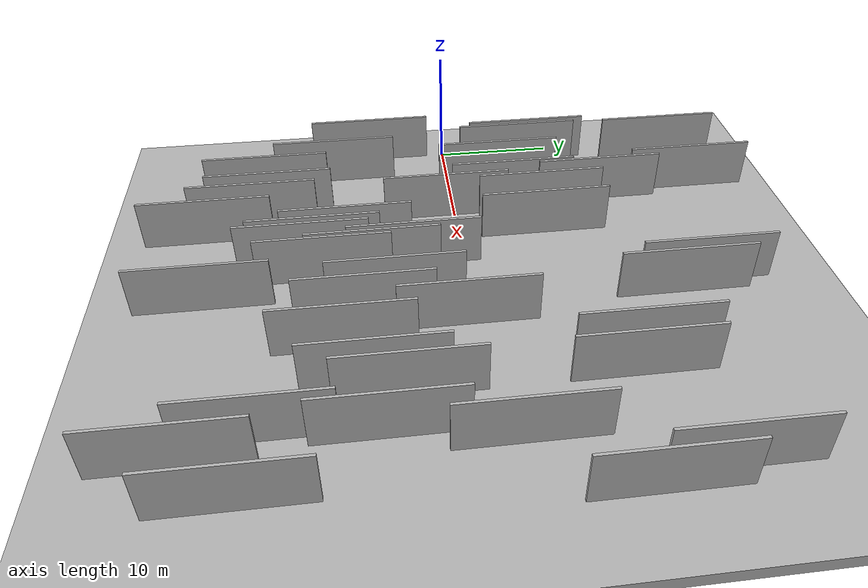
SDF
<?xml version="1.0" encoding="utf-8"?>

<sdf version="1.6">

   <world name="default">

      <gui fullscreen="0">

         <camera name="user_camera">

            <pose>-15 0 4.57585 0 0 0</pose>

            <view_controller>orbit</view_controller>

         </camera>

      </gui>

      <scene>

         <sky>

           <clouds>

             <speed>12</speed>

           </clouds>

         </sky>

         <ambient>0.4 0.4 0.4 1</ambient>

         <background>0.7 0.7 0.7 1</background>

         <shadows>1</shadows>

      </scene>

      <gravity>0 0 -9.8066</gravity>

      <magnetic_field>6e-06 2.3e-05 -4.2e-05</magnetic_field>

      <physics default="0" name="default_physics" type="ode">

         <ode>

            <solver>

               <type>quick</type>

               <iters>10</iters>

               <sor>1.0</sor>

               <use_dynamic_moi_rescaling>0</use_dynamic_moi_rescaling>

            </solver>

            <constraints>

               <cfm>0</cfm>

               <erp>0.2</erp>

               <contact_max_correcting_vel>100</contact_max_correcting_vel>

               <contact_surface_layer>0.001</contact_surface_layer>

            </constraints>

         </ode>

         <max_step_size>0.004</max_step_size>

         <real_time_factor>1</real_time_factor>

         <real_time_update_rate>250</real_time_update_rate>

      </physics>

      <light name="sun" type="directional">

         <cast_shadows>1</cast_shadows>

         <pose>0 0 10 0 0 0</pose>

         <diffuse>0.8 0.8 0.8 1</diffuse>

         <specular>0.2 0.2 0.2 1</specular>

         <attenuation>

            <range>1000</range>

            <constant>0.9</constant>

            <linear>0.01</linear>

            <quadratic>0.001</quadratic>

         </attenuation>

         <direction>-0.5 0.1 -0.9</direction>

      </light>

      <include>

         <name>ground_plane_1</name>

         <uri>model://HANNAS_ground_plane</uri>

         <pose>0 0 0  0 0 0</pose>

      </include>

      <include>

         <name>ground_plane_2</name>

         <uri>model://HANNAS_ground_plane</uri>

         <pose>100 0 0  0 0 0</pose>

      </include>

      <model name="HANNAS_wall_1">

         <static>1</static>

         <pose frame="">23.1692 -5.7111 2.5 0.000000 0.000000 1.570796</pose>

         <link name="link">

            <pose frame="">0 0 2.00 0 0 0</pose>

            <collision name="collision">

               <geometry>

                  <box>

                     <size>10.00 0.2 4.00</size>

                  </box>

               </geometry>

               <max_contacts>10</max_contacts>

               <surface>

                  <contact>

                     <ode/>

                  </contact>

                  <bounce/>

                  <friction>

                     <torsional>

                        <ode/>

                     </torsional>

                     <ode/>

                  </friction>

               </surface>

            </collision>

            <visual name="visual">

               <cast_shadows>0</cast_shadows>

               <geometry>

                  <box>

                     <size>10.00 0.2 4.00</size>

                  </box>

               </geometry>

               <material>

                  <script>

                     <uri>model://HANNAS_wall/materials/scripts</uri>

                     <uri>model://HANNAS_wall/materials/textures</uri>

                     <name>vrc/HANNAS_wall</name>

                  </script>

               </material>

            </visual>

            <self_collide>0</self_collide>

            <enable_wind>0</enable_wind>

            <kinematic>0</kinematic>

         </link>

      </model>

      <model name="HANNAS_wall_2">

         <static>1</static>

         <pose frame="">8.8089 -15.5152 2.5 0.000000 0.000000 1.570796</pose>

         <link name="link">

            <pose frame="">0 0 2.00 0 0 0</pose>

            <collision name="collision">

               <geometry>

                  <box>

                     <size>10.00 0.2 4.00</size>

                  </box>

               </geometry>

               <max_contacts>10</max_contacts>

               <surface>

                  <contact>

                     <ode/>

                  </contact>

                  <bounce/>

                  <friction>

                     <torsional>

                        <ode/>

                     </torsional>

                     <ode/>

                  </friction>

               </surface>

            </collision>

            <visual name="visual">

               <cast_shadows>0</cast_shadows>

               <geometry>

                  <box>

                     <size>10.00 0.2 4.00</size>

                  </box>

               </geometry>

               <material>

                  <script>

                     <uri>model://HANNAS_wall/materials/scripts</uri>

                     <uri>model://HANNAS_wall/materials/textures</uri>

                     <name>vrc/HANNAS_wall</name>

                  </script>

               </material>

            </visual>

            <self_collide>0</self_collide>

            <enable_wind>0</enable_wind>

            <kinematic>0</kinematic>

         </link>

      </model>

      <model name="HANNAS_wall_3">

         <static>1</static>

         <pose frame="">23.7531 17.0360 2.5 0.000000 0.000000 1.570796</pose>

         <link name="link">

            <pose frame="">0 0 2.00 0 0 0</pose>

            <collision name="collision">

               <geometry>

                  <box>

                     <size>10.00 0.2 4.00</size>

                  </box>

               </geometry>

               <max_contacts>10</max_contacts>

               <surface>

                  <contact>

                     <ode/>

                  </contact>

                  <bounce/>

                  <friction>

                     <torsional>

                        <ode/>

                     </torsional>

                     <ode/>

                  </friction>

               </surface>

            </collision>

            <visual name="visual">

               <cast_shadows>0</cast_shadows>

               <geometry>

                  <box>

                     <size>10.00 0.2 4.00</size>

                  </box>

               </geometry>

               <material>

                  <script>

                     <uri>model://HANNAS_wall/materials/scripts</uri>

                     <uri>model://HANNAS_wall/materials/textures</uri>

                     <name>vrc/HANNAS_wall</name>

                  </script>

               </material>

            </visual>

            <self_collide>0</self_collide>

            <enable_wind>0</enable_wind>

            <kinematic>0</kinematic>

         </link>

      </model>

      <model name="HANNAS_wall_4">

         <static>1</static>

         <pose frame="">12.7245 -16.4212 2.5 0.000000 0.000000 1.570796</pose>

         <link name="link">

            <pose frame="">0 0 2.00 0 0 0</pose>

            <collision name="collision">

               <geometry>

                  <box>

                     <size>10.00 0.2 4.00</size>

                  </box>

               </geometry>

               <max_contacts>10</max_contacts>

               <surface>

                  <contact>

                     <ode/>

                  </contact>

                  <bounce/>

                  <friction>

                     <torsional>

                        <ode/>

                     </torsional>

                     <ode/>

                  </friction>

               </surface>

            </collision>

            <visual name="visual">

               <cast_shadows>0</cast_shadows>

               <geometry>

                  <box>

                     <size>10.00 0.2 4.00</size>

                  </box>

               </geometry>

               <material>

                  <script>

                     <uri>model://HANNAS_wall/materials/scripts</uri>

                     <uri>model://HANNAS_wall/materials/textures</uri>

                     <name>vrc/HANNAS_wall</name>

                  </script>

               </material>

            </visual>

            <self_collide>0</self_collide>

            <enable_wind>0</enable_wind>

            <kinematic>0</kinematic>

         </link>

      </model>

      <model name="HANNAS_wall_5">

         <static>1</static>

         <pose frame="">24.8041 -7.9614 2.5 0.000000 0.000000 1.570796</pose>

         <link name="link">

            <pose frame="">0 0 2.00 0 0 0</pose>

            <collision name="collision">

               <geometry>

                  <box>

                     <size>10.00 0.2 4.00</size>

                  </box>

               </geometry>

               <max_contacts>10</max_contacts>

               <surface>

                  <contact>

                     <ode/>

                  </contact>

                  <bounce/>

                  <friction>

                     <torsional>

                        <ode/>

                     </torsional>

                     <ode/>

                  </friction>

               </surface>

            </collision>

            <visual name="visual">

               <cast_shadows>0</cast_shadows>

               <geometry>

                  <box>

                     <size>10.00 0.2 4.00</size>

                  </box>

               </geometry>

               <material>

                  <script>

                     <uri>model://HANNAS_wall/materials/scripts</uri>

                     <uri>model://HANNAS_wall/materials/textures</uri>

                     <name>vrc/HANNAS_wall</name>

                  </script>

               </material>

            </visual>

            <self_collide>0</self_collide>

            <enable_wind>0</enable_wind>

            <kinematic>0</kinematic>

         </link>

      </model>

      <model name="HANNAS_wall_6">

         <static>1</static>

         <pose frame="">36.3233 -19.7050 2.5 0.000000 0.000000 1.570796</pose>

         <link name="link">

            <pose frame="">0 0 2.00 0 0 0</pose>

            <collision name="collision">

               <geometry>

                  <box>

                     <size>10.00 0.2 4.00</size>

                  </box>

               </geometry>

               <max_contacts>10</max_contacts>

               <surface>

                  <contact>

                     <ode/>

                  </contact>

                  <bounce/>

                  <friction>

                     <torsional>

                        <ode/>

                     </torsional>

                     <ode/>

                  </friction>

               </surface>

            </collision>

            <visual name="visual">

               <cast_shadows>0</cast_shadows>

               <geometry>

                  <box>

                     <size>10.00 0.2 4.00</size>

                  </box>

               </geometry>

               <material>

                  <script>

                     <uri>model://HANNAS_wall/materials/scripts</uri>

                     <uri>model://HANNAS_wall/materials/textures</uri>

                     <name>vrc/HANNAS_wall</name>

                  </script>

               </material>

            </visual>

            <self_collide>0</self_collide>

            <enable_wind>0</enable_wind>

            <kinematic>0</kinematic>

         </link>

      </model>

      <model name="HANNAS_wall_7">

         <static>1</static>

         <pose frame="">13.7988 6.6085 2.5 0.000000 0.000000 1.570796</pose>

         <link name="link">

            <pose frame="">0 0 2.00 0 0 0</pose>

            <collision name="collision">

               <geometry>

                  <box>

                     <size>10.00 0.2 4.00</size>

                  </box>

               </geometry>

               <max_contacts>10</max_contacts>

               <surface>

                  <contact>

                     <ode/>

                  </contact>

                  <bounce/>

                  <friction>

                     <torsional>

                        <ode/>

                     </torsional>

                     <ode/>

                  </friction>

               </surface>

            </collision>

            <visual name="visual">

               <cast_shadows>0</cast_shadows>

               <geometry>

                  <box>

                     <size>10.00 0.2 4.00</size>

                  </box>

               </geometry>

               <material>

                  <script>

                     <uri>model://HANNAS_wall/materials/scripts</uri>

                     <uri>model://HANNAS_wall/materials/textures</uri>

                     <name>vrc/HANNAS_wall</name>

                  </script>

               </material>

            </visual>

            <self_collide>0</self_collide>

            <enable_wind>0</enable_wind>

            <kinematic>0</kinematic>

         </link>

      </model>

      <model name="HANNAS_wall_8">

         <static>1</static>

         <pose frame="">11.4305 19.7447 2.5 0.000000 0.000000 1.570796</pose>

         <link name="link">

            <pose frame="">0 0 2.00 0 0 0</pose>

            <collision name="collision">

               <geometry>

                  <box>

                     <size>10.00 0.2 4.00</size>

                  </box>

               </geometry>

               <max_contacts>10</max_contacts>

               <surface>

                  <contact>

                     <ode/>

                  </contact>

                  <bounce/>

                  <friction>

                     <torsional>

                        <ode/>

                     </torsional>

                     <ode/>

                  </friction>

               </surface>

            </collision>

            <visual name="visual">

               <cast_shadows>0</cast_shadows>

               <geometry>

                  <box>

                     <size>10.00 0.2 4.00</size>

                  </box>

               </geometry>

               <material>

                  <script>

                     <uri>model://HANNAS_wall/materials/scripts</uri>

                     <uri>model://HANNAS_wall/materials/textures</uri>

                     <name>vrc/HANNAS_wall</name>

                  </script>

               </material>

            </visual>

            <self_collide>0</self_collide>

            <enable_wind>0</enable_wind>

            <kinematic>0</kinematic>

         </link>

      </model>

      <model name="HANNAS_wall_9">

         <static>1</static>

         <pose frame="">35.5158 -6.8613 2.5 0.000000 0.000000 1.570796</pose>

         <link name="link">

            <pose frame="">0 0 2.00 0 0 0</pose>

            <collision name="collision">

               <geometry>

                  <box>

                     <size>10.00 0.2 4.00</size>

                  </box>

               </geometry>

               <max_contacts>10</max_contacts>

               <surface>

                  <contact>

                     <ode/>

                  </contact>

                  <bounce/>

                  <friction>

                     <torsional>

                        <ode/>

                     </torsional>

                     <ode/>

                  </friction>

               </surface>

            </collision>

            <visual name="visual">

               <cast_shadows>0</cast_shadows>

               <geometry>

                  <box>

                     <size>10.00 0.2 4.00</size>

                  </box>

               </geometry>

               <material>

                  <script>

                     <uri>model://HANNAS_wall/materials/scripts</uri>

                     <uri>model://HANNAS_wall/materials/textures</uri>

                     <name>vrc/HANNAS_wall</name>

                  </script>

               </material>

            </visual>

            <self_collide>0</self_collide>

            <enable_wind>0</enable_wind>

            <kinematic>0</kinematic>

         </link>

      </model>

      <model name="HANNAS_wall_10">

         <static>1</static>

         <pose frame="">26.2723 -0.8661 2.5 0.000000 0.000000 1.570796</pose>

         <link name="link">

            <pose frame="">0 0 2.00 0 0 0</pose>

            <collision name="collision">

               <geometry>

                  <box>

                     <size>10.00 0.2 4.00</size>

                  </box>

               </geometry>

               <max_contacts>10</max_contacts>

               <surface>

                  <contact>

                     <ode/>

                  </contact>

                  <bounce/>

                  <friction>

                     <torsional>

                        <ode/>

                     </torsional>

                     <ode/>

                  </friction>

               </surface>

            </collision>

            <visual name="visual">

               <cast_shadows>0</cast_shadows>

               <geometry>

                  <box>

                     <size>10.00 0.2 4.00</size>

                  </box>

               </geometry>

               <material>

                  <script>

                     <uri>model://HANNAS_wall/materials/scripts</uri>

                     <uri>model://HANNAS_wall/materials/textures</uri>

                     <name>vrc/HANNAS_wall</name>

                  </script>

               </material>

            </visual>

            <self_collide>0</self_collide>

            <enable_wind>0</enable_wind>

            <kinematic>0</kinematic>

         </link>

      </model>

      <model name="HANNAS_wall_11">

         <static>1</static>

         <pose frame="">12.3211 11.7401 2.5 0.000000 0.000000 1.570796</pose>

         <link name="link">

            <pose frame="">0 0 2.00 0 0 0</pose>

            <collision name="collision">

               <geometry>

                  <box>

                     <size>10.00 0.2 4.00</size>

                  </box>

               </geometry>

               <max_contacts>10</max_contacts>

               <surface>

                  <contact>

                     <ode/>

                  </contact>

                  <bounce/>

                  <friction>

                     <torsional>

                        <ode/>

                     </torsional>

                     <ode/>

                  </friction>

               </surface>

            </collision>

            <visual name="visual">

               <cast_shadows>0</cast_shadows>

               <geometry>

                  <box>

                     <size>10.00 0.2 4.00</size>

                  </box>

               </geometry>

               <material>

                  <script>

                     <uri>model://HANNAS_wall/materials/scripts</uri>

                     <uri>model://HANNAS_wall/materials/textures</uri>

                     <name>vrc/HANNAS_wall</name>

                  </script>

               </material>

            </visual>

            <self_collide>0</self_collide>

            <enable_wind>0</enable_wind>

            <kinematic>0</kinematic>

         </link>

      </model>

      <model name="HANNAS_wall_12">

         <static>1</static>

         <pose frame="">30.4432 10.5828 2.5 0.000000 0.000000 1.570796</pose>

         <link name="link">

            <pose frame="">0 0 2.00 0 0 0</pose>

            <collision name="collision">

               <geometry>

                  <box>

                     <size>10.00 0.2 4.00</size>

                  </box>

               </geometry>

               <max_contacts>10</max_contacts>

               <surface>

                  <contact>

                     <ode/>

                  </contact>

                  <bounce/>

                  <friction>

                     <torsional>

                        <ode/>

                     </torsional>

                     <ode/>

                  </friction>

               </surface>

            </collision>

            <visual name="visual">

               <cast_shadows>0</cast_shadows>

               <geometry>

                  <box>

                     <size>10.00 0.2 4.00</size>

                  </box>

               </geometry>

               <material>

                  <script>

                     <uri>model://HANNAS_wall/materials/scripts</uri>

                     <uri>model://HANNAS_wall/materials/textures</uri>

                     <name>vrc/HANNAS_wall</name>

                  </script>

               </material>

            </visual>

            <self_collide>0</self_collide>

            <enable_wind>0</enable_wind>

            <kinematic>0</kinematic>

         </link>

      </model>

      <model name="HANNAS_wall_13">

         <static>1</static>

         <pose frame="">34.8118 -14.9134 2.5 0.000000 0.000000 1.570796</pose>

         <link name="link">

            <pose frame="">0 0 2.00 0 0 0</pose>

            <collision name="collision">

               <geometry>

                  <box>

                     <size>10.00 0.2 4.00</size>

                  </box>

               </geometry>

               <max_contacts>10</max_contacts>

               <surface>

                  <contact>

                     <ode/>

                  </contact>

                  <bounce/>

                  <friction>

                     <torsional>

                        <ode/>

                     </torsional>

                     <ode/>

                  </friction>

               </surface>

            </collision>

            <visual name="visual">

               <cast_shadows>0</cast_shadows>

               <geometry>

                  <box>

                     <size>10.00 0.2 4.00</size>

                  </box>

               </geometry>

               <material>

                  <script>

                     <uri>model://HANNAS_wall/materials/scripts</uri>

                     <uri>model://HANNAS_wall/materials/textures</uri>

                     <name>vrc/HANNAS_wall</name>

                  </script>

               </material>

            </visual>

            <self_collide>0</self_collide>

            <enable_wind>0</enable_wind>

            <kinematic>0</kinematic>

         </link>

      </model>

      <model name="HANNAS_wall_14">

         <static>1</static>

         <pose frame="">32.4131 9.8913 2.5 0.000000 0.000000 1.570796</pose>

         <link name="link">

            <pose frame="">0 0 2.00 0 0 0</pose>

            <collision name="collision">

               <geometry>

                  <box>

                     <size>10.00 0.2 4.00</size>

                  </box>

               </geometry>

               <max_contacts>10</max_contacts>

               <surface>

                  <contact>

                     <ode/>

                  </contact>

                  <bounce/>

                  <friction>

                     <torsional>

                        <ode/>

                     </torsional>

                     <ode/>

                  </friction>

               </surface>

            </collision>

            <visual name="visual">

               <cast_shadows>0</cast_shadows>

               <geometry>

                  <box>

                     <size>10.00 0.2 4.00</size>

                  </box>

               </geometry>

               <material>

                  <script>

                     <uri>model://HANNAS_wall/materials/scripts</uri>

                     <uri>model://HANNAS_wall/materials/textures</uri>

                     <name>vrc/HANNAS_wall</name>

                  </script>

               </material>

            </visual>

            <self_collide>0</self_collide>

            <enable_wind>0</enable_wind>

            <kinematic>0</kinematic>

         </link>

      </model>

      <model name="HANNAS_wall_15">

         <static>1</static>

         <pose frame="">18.3976 -12.3754 2.5 0.000000 0.000000 1.570796</pose>

         <link name="link">

            <pose frame="">0 0 2.00 0 0 0</pose>

            <collision name="collision">

               <geometry>

                  <box>

                     <size>10.00 0.2 4.00</size>

                  </box>

               </geometry>

               <max_contacts>10</max_contacts>

               <surface>

                  <contact>

                     <ode/>

                  </contact>

                  <bounce/>

                  <friction>

                     <torsional>

                        <ode/>

                     </torsional>

                     <ode/>

                  </friction>

               </surface>

            </collision>

            <visual name="visual">

               <cast_shadows>0</cast_shadows>

               <geometry>

                  <box>

                     <size>10.00 0.2 4.00</size>

                  </box>

               </geometry>

               <material>

                  <script>

                     <uri>model://HANNAS_wall/materials/scripts</uri>

                     <uri>model://HANNAS_wall/materials/textures</uri>

                     <name>vrc/HANNAS_wall</name>

                  </script>

               </material>

            </visual>

            <self_collide>0</self_collide>

            <enable_wind>0</enable_wind>

            <kinematic>0</kinematic>

         </link>

      </model>

      <model name="HANNAS_wall_16">

         <static>1</static>

         <pose frame="">27.6987 -9.5060 2.5 0.000000 0.000000 1.570796</pose>

         <link name="link">

            <pose frame="">0 0 2.00 0 0 0</pose>

            <collision name="collision">

               <geometry>

                  <box>

                     <size>10.00 0.2 4.00</size>

                  </box>

               </geometry>

               <max_contacts>10</max_contacts>

               <surface>

                  <contact>

                     <ode/>

                  </contact>

                  <bounce/>

                  <friction>

                     <torsional>

                        <ode/>

                     </torsional>

                     <ode/>

                  </friction>

               </surface>

            </collision>

            <visual name="visual">

               <cast_shadows>0</cast_shadows>

               <geometry>

                  <box>

                     <size>10.00 0.2 4.00</size>

                  </box>

               </geometry>

               <material>

                  <script>

                     <uri>model://HANNAS_wall/materials/scripts</uri>

                     <uri>model://HANNAS_wall/materials/textures</uri>

                     <name>vrc/HANNAS_wall</name>

                  </script>

               </material>

            </visual>

            <self_collide>0</self_collide>

            <enable_wind>0</enable_wind>

            <kinematic>0</kinematic>

         </link>

      </model>

      <model name="HANNAS_wall_17">

         <static>1</static>

         <pose frame="">19.8444 -7.1583 2.5 0.000000 0.000000 1.570796</pose>

         <link name="link">

            <pose frame="">0 0 2.00 0 0 0</pose>

            <collision name="collision">

               <geometry>

                  <box>

                     <size>10.00 0.2 4.00</size>

                  </box>

               </geometry>

               <max_contacts>10</max_contacts>

               <surface>

                  <contact>

                     <ode/>

                  </contact>

                  <bounce/>

                  <friction>

                     <torsional>

                        <ode/>

                     </torsional>

                     <ode/>

                  </friction>

               </surface>

            </collision>

            <visual name="visual">

               <cast_shadows>0</cast_shadows>

               <geometry>

                  <box>

                     <size>10.00 0.2 4.00</size>

                  </box>

               </geometry>

               <material>

                  <script>

                     <uri>model://HANNAS_wall/materials/scripts</uri>

                     <uri>model://HANNAS_wall/materials/textures</uri>

                     <name>vrc/HANNAS_wall</name>

                  </script>

               </material>

            </visual>

            <self_collide>0</self_collide>

            <enable_wind>0</enable_wind>

            <kinematic>0</kinematic>

         </link>

      </model>

      <model name="HANNAS_wall_18">

         <static>1</static>

         <pose frame="">14.6162 -19.8121 2.5 0.000000 0.000000 1.570796</pose>

         <link name="link">

            <pose frame="">0 0 2.00 0 0 0</pose>

            <collision name="collision">

               <geometry>

                  <box>

                     <size>10.00 0.2 4.00</size>

                  </box>

               </geometry>

               <max_contacts>10</max_contacts>

               <surface>

                  <contact>

                     <ode/>

                  </contact>

                  <bounce/>

                  <friction>

                     <torsional>

                        <ode/>

                     </torsional>

                     <ode/>

                  </friction>

               </surface>

            </collision>

            <visual name="visual">

               <cast_shadows>0</cast_shadows>

               <geometry>

                  <box>

                     <size>10.00 0.2 4.00</size>

                  </box>

               </geometry>

               <material>

                  <script>

                     <uri>model://HANNAS_wall/materials/scripts</uri>

                     <uri>model://HANNAS_wall/materials/textures</uri>

                     <name>vrc/HANNAS_wall</name>

                  </script>

               </material>

            </visual>

            <self_collide>0</self_collide>

            <enable_wind>0</enable_wind>

            <kinematic>0</kinematic>

         </link>

      </model>

      <model name="HANNAS_wall_19">

         <static>1</static>

         <pose frame="">16.4527 6.4437 2.5 0.000000 0.000000 1.570796</pose>

         <link name="link">

            <pose frame="">0 0 2.00 0 0 0</pose>

            <collision name="collision">

               <geometry>

                  <box>

                     <size>10.00 0.2 4.00</size>

                  </box>

               </geometry>

               <max_contacts>10</max_contacts>

               <surface>

                  <contact>

                     <ode/>

                  </contact>

                  <bounce/>

                  <friction>

                     <torsional>

                        <ode/>

                     </torsional>

                     <ode/>

                  </friction>

               </surface>

            </collision>

            <visual name="visual">

               <cast_shadows>0</cast_shadows>

               <geometry>

                  <box>

                     <size>10.00 0.2 4.00</size>

                  </box>

               </geometry>

               <material>

                  <script>

                     <uri>model://HANNAS_wall/materials/scripts</uri>

                     <uri>model://HANNAS_wall/materials/textures</uri>

                     <name>vrc/HANNAS_wall</name>

                  </script>

               </material>

            </visual>

            <self_collide>0</self_collide>

            <enable_wind>0</enable_wind>

            <kinematic>0</kinematic>

         </link>

      </model>

      <model name="HANNAS_wall_20">

         <static>1</static>

         <pose frame="">24.7977 15.1253 2.5 0.000000 0.000000 1.570796</pose>

         <link name="link">

            <pose frame="">0 0 2.00 0 0 0</pose>

            <collision name="collision">

               <geometry>

                  <box>

                     <size>10.00 0.2 4.00</size>

                  </box>

               </geometry>

               <max_contacts>10</max_contacts>

               <surface>

                  <contact>

                     <ode/>

                  </contact>

                  <bounce/>

                  <friction>

                     <torsional>

                        <ode/>

                     </torsional>

                     <ode/>

                  </friction>

               </surface>

            </collision>

            <visual name="visual">

               <cast_shadows>0</cast_shadows>

               <geometry>

                  <box>

                     <size>10.00 0.2 4.00</size>

                  </box>

               </geometry>

               <material>

                  <script>

                     <uri>model://HANNAS_wall/materials/scripts</uri>

                     <uri>model://HANNAS_wall/materials/textures</uri>

                     <name>vrc/HANNAS_wall</name>

                  </script>

               </material>

            </visual>

            <self_collide>0</self_collide>

            <enable_wind>0</enable_wind>

            <kinematic>0</kinematic>

         </link>

      </model>

      <model name="HANNAS_wall_21">

         <static>1</static>

         <pose frame="">6.2727 18.5757 2.5 0.000000 0.000000 1.570796</pose>

         <link name="link">

            <pose frame="">0 0 2.00 0 0 0</pose>

            <collision name="collision">

               <geometry>

                  <box>

                     <size>10.00 0.2 4.00</size>

                  </box>

               </geometry>

               <max_contacts>10</max_contacts>

               <surface>

                  <contact>

                     <ode/>

                  </contact>

                  <bounce/>

                  <friction>

                     <torsional>

                        <ode/>

                     </torsional>

                     <ode/>

                  </friction>

               </surface>

            </collision>

            <visual name="visual">

               <cast_shadows>0</cast_shadows>

               <geometry>

                  <box>

                     <size>10.00 0.2 4.00</size>

                  </box>

               </geometry>

               <material>

                  <script>

                     <uri>model://HANNAS_wall/materials/scripts</uri>

                     <uri>model://HANNAS_wall/materials/textures</uri>

                     <name>vrc/HANNAS_wall</name>

                  </script>

               </material>

            </visual>

            <self_collide>0</self_collide>

            <enable_wind>0</enable_wind>

            <kinematic>0</kinematic>

         </link>

      </model>

      <model name="HANNAS_wall_22">

         <static>1</static>

         <pose frame="">8.7152 3.8779 2.5 0.000000 0.000000 1.570796</pose>

         <link name="link">

            <pose frame="">0 0 2.00 0 0 0</pose>

            <collision name="collision">

               <geometry>

                  <box>

                     <size>10.00 0.2 4.00</size>

                  </box>

               </geometry>

               <max_contacts>10</max_contacts>

               <surface>

                  <contact>

                     <ode/>

                  </contact>

                  <bounce/>

                  <friction>

                     <torsional>

                        <ode/>

                     </torsional>

                     <ode/>

                  </friction>

               </surface>

            </collision>

            <visual name="visual">

               <cast_shadows>0</cast_shadows>

               <geometry>

                  <box>

                     <size>10.00 0.2 4.00</size>

                  </box>

               </geometry>

               <material>

                  <script>

                     <uri>model://HANNAS_wall/materials/scripts</uri>

                     <uri>model://HANNAS_wall/materials/textures</uri>

                     <name>vrc/HANNAS_wall</name>

                  </script>

               </material>

            </visual>

            <self_collide>0</self_collide>

            <enable_wind>0</enable_wind>

            <kinematic>0</kinematic>

         </link>

      </model>

      <model name="HANNAS_wall_23">

         <static>1</static>

         <pose frame="">19.2820 -4.0748 2.5 0.000000 0.000000 1.570796</pose>

         <link name="link">

            <pose frame="">0 0 2.00 0 0 0</pose>

            <collision name="collision">

               <geometry>

                  <box>

                     <size>10.00 0.2 4.00</size>

                  </box>

               </geometry>

               <max_contacts>10</max_contacts>

               <surface>

                  <contact>

                     <ode/>

                  </contact>

                  <bounce/>

                  <friction>

                     <torsional>

                        <ode/>

                     </torsional>

                     <ode/>

                  </friction>

               </surface>

            </collision>

            <visual name="visual">

               <cast_shadows>0</cast_shadows>

               <geometry>

                  <box>

                     <size>10.00 0.2 4.00</size>

                  </box>

               </geometry>

               <material>

                  <script>

                     <uri>model://HANNAS_wall/materials/scripts</uri>

                     <uri>model://HANNAS_wall/materials/textures</uri>

                     <name>vrc/HANNAS_wall</name>

                  </script>

               </material>

            </visual>

            <self_collide>0</self_collide>

            <enable_wind>0</enable_wind>

            <kinematic>0</kinematic>

         </link>

      </model>

      <model name="HANNAS_wall_24">

         <static>1</static>

         <pose frame="">36.8950 1.5332 2.5 0.000000 0.000000 1.570796</pose>

         <link name="link">

            <pose frame="">0 0 2.00 0 0 0</pose>

            <collision name="collision">

               <geometry>

                  <box>

                     <size>10.00 0.2 4.00</size>

                  </box>

               </geometry>

               <max_contacts>10</max_contacts>

               <surface>

                  <contact>

                     <ode/>

                  </contact>

                  <bounce/>

                  <friction>

                     <torsional>

                        <ode/>

                     </torsional>

                     <ode/>

                  </friction>

               </surface>

            </collision>

            <visual name="visual">

               <cast_shadows>0</cast_shadows>

               <geometry>

                  <box>

                     <size>10.00 0.2 4.00</size>

                  </box>

               </geometry>

               <material>

                  <script>

                     <uri>model://HANNAS_wall/materials/scripts</uri>

                     <uri>model://HANNAS_wall/materials/textures</uri>

                     <name>vrc/HANNAS_wall</name>

                  </script>

               </material>

            </visual>

            <self_collide>0</self_collide>

            <enable_wind>0</enable_wind>

            <kinematic>0</kinematic>

         </link>

      </model>

      <model name="HANNAS_wall_25">

         <static>1</static>

         <pose frame="">22.4961 -19.4308 2.5 0.000000 0.000000 1.570796</pose>

         <link name="link">

            <pose frame="">0 0 2.00 0 0 0</pose>

            <collision name="collision">

               <geometry>

                  <box>

                     <size>10.00 0.2 4.00</size>

                  </box>

               </geometry>

               <max_contacts>10</max_contacts>

               <surface>

                  <contact>

                     <ode/>

                  </contact>

                  <bounce/>

                  <friction>

                     <torsional>

                        <ode/>

                     </torsional>

                     <ode/>

                  </friction>

               </surface>

            </collision>

            <visual name="visual">

               <cast_shadows>0</cast_shadows>

               <geometry>

                  <box>

                     <size>10.00 0.2 4.00</size>

                  </box>

               </geometry>

               <material>

                  <script>

                     <uri>model://HANNAS_wall/materials/scripts</uri>

                     <uri>model://HANNAS_wall/materials/textures</uri>

                     <name>vrc/HANNAS_wall</name>

                  </script>

               </material>

            </visual>

            <self_collide>0</self_collide>

            <enable_wind>0</enable_wind>

            <kinematic>0</kinematic>

         </link>

      </model>

      <model name="HANNAS_wall_26">

         <static>1</static>

         <pose frame="">16.6846 -9.0794 2.5 0.000000 0.000000 1.570796</pose>

         <link name="link">

            <pose frame="">0 0 2.00 0 0 0</pose>

            <collision name="collision">

               <geometry>

                  <box>

                     <size>10.00 0.2 4.00</size>

                  </box>

               </geometry>

               <max_contacts>10</max_contacts>

               <surface>

                  <contact>

                     <ode/>

                  </contact>

                  <bounce/>

                  <friction>

                     <torsional>

                        <ode/>

                     </torsional>

                     <ode/>

                  </friction>

               </surface>

            </collision>

            <visual name="visual">

               <cast_shadows>0</cast_shadows>

               <geometry>

                  <box>

                     <size>10.00 0.2 4.00</size>

                  </box>

               </geometry>

               <material>

                  <script>

                     <uri>model://HANNAS_wall/materials/scripts</uri>

                     <uri>model://HANNAS_wall/materials/textures</uri>

                     <name>vrc/HANNAS_wall</name>

                  </script>

               </material>

            </visual>

            <self_collide>0</self_collide>

            <enable_wind>0</enable_wind>

            <kinematic>0</kinematic>

         </link>

      </model>

      <model name="HANNAS_wall_27">

         <static>1</static>

         <pose frame="">20.2823 -10.8004 2.5 0.000000 0.000000 1.570796</pose>

         <link name="link">

            <pose frame="">0 0 2.00 0 0 0</pose>

            <collision name="collision">

               <geometry>

                  <box>

                     <size>10.00 0.2 4.00</size>

                  </box>

               </geometry>

               <max_contacts>10</max_contacts>

               <surface>

                  <contact>

                     <ode/>

                  </contact>

                  <bounce/>

                  <friction>

                     <torsional>

                        <ode/>

                     </torsional>

                     <ode/>

                  </friction>

               </surface>

            </collision>

            <visual name="visual">

               <cast_shadows>0</cast_shadows>

               <geometry>

                  <box>

                     <size>10.00 0.2 4.00</size>

                  </box>

               </geometry>

               <material>

                  <script>

                     <uri>model://HANNAS_wall/materials/scripts</uri>

                     <uri>model://HANNAS_wall/materials/textures</uri>

                     <name>vrc/HANNAS_wall</name>

                  </script>

               </material>

            </visual>

            <self_collide>0</self_collide>

            <enable_wind>0</enable_wind>

            <kinematic>0</kinematic>

         </link>

      </model>

      <model name="HANNAS_wall_28">

         <static>1</static>

         <pose frame="">32.3877 -5.4200 2.5 0.000000 0.000000 1.570796</pose>

         <link name="link">

            <pose frame="">0 0 2.00 0 0 0</pose>

            <collision name="collision">

               <geometry>

                  <box>

                     <size>10.00 0.2 4.00</size>

                  </box>

               </geometry>

               <max_contacts>10</max_contacts>

               <surface>

                  <contact>

                     <ode/>

                  </contact>

                  <bounce/>

                  <friction>

                     <torsional>

                        <ode/>

                     </torsional>

                     <ode/>

                  </friction>

               </surface>

            </collision>

            <visual name="visual">

               <cast_shadows>0</cast_shadows>

               <geometry>

                  <box>

                     <size>10.00 0.2 4.00</size>

                  </box>

               </geometry>

               <material>

                  <script>

                     <uri>model://HANNAS_wall/materials/scripts</uri>

                     <uri>model://HANNAS_wall/materials/textures</uri>

                     <name>vrc/HANNAS_wall</name>

                  </script>

               </material>

            </visual>

            <self_collide>0</self_collide>

            <enable_wind>0</enable_wind>

            <kinematic>0</kinematic>

         </link>

      </model>

      <model name="HANNAS_wall_29">

         <static>1</static>

         <pose frame="">11.2845 -15.1771 2.5 0.000000 0.000000 1.570796</pose>

         <link name="link">

            <pose frame="">0 0 2.00 0 0 0</pose>

            <collision name="collision">

               <geometry>

                  <box>

                     <size>10.00 0.2 4.00</size>

                  </box>

               </geometry>

               <max_contacts>10</max_contacts>

               <surface>

                  <contact>

                     <ode/>

                  </contact>

                  <bounce/>

                  <friction>

                     <torsional>

                        <ode/>

                     </torsional>

                     <ode/>

                  </friction>

               </surface>

            </collision>

            <visual name="visual">

               <cast_shadows>0</cast_shadows>

               <geometry>

                  <box>

                     <size>10.00 0.2 4.00</size>

                  </box>

               </geometry>

               <material>

                  <script>

                     <uri>model://HANNAS_wall/materials/scripts</uri>

                     <uri>model://HANNAS_wall/materials/textures</uri>

                     <name>vrc/HANNAS_wall</name>

                  </script>

               </material>

            </visual>

            <self_collide>0</self_collide>

            <enable_wind>0</enable_wind>

            <kinematic>0</kinematic>

         </link>

      </model>

      <model name="HANNAS_wall_30">

         <static>1</static>

         <pose frame="">31.0245 -7.5171 2.5 0.000000 0.000000 1.570796</pose>

         <link name="link">

            <pose frame="">0 0 2.00 0 0 0</pose>

            <collision name="collision">

               <geometry>

                  <box>

                     <size>10.00 0.2 4.00</size>

                  </box>

               </geometry>

               <max_contacts>10</max_contacts>

               <surface>

                  <contact>

                     <ode/>

                  </contact>

                  <bounce/>

                  <friction>

                     <torsional>

                        <ode/>

                     </torsional>

                     <ode/>

                  </friction>

               </surface>

            </collision>

            <visual name="visual">

               <cast_shadows>0</cast_shadows>

               <geometry>

                  <box>

                     <size>10.00 0.2 4.00</size>

                  </box>

               </geometry>

               <material>

                  <script>

                     <uri>model://HANNAS_wall/materials/scripts</uri>

                     <uri>model://HANNAS_wall/materials/textures</uri>

                     <name>vrc/HANNAS_wall</name>

                  </script>

               </material>

            </visual>

            <self_collide>0</self_collide>

            <enable_wind>0</enable_wind>

            <kinematic>0</kinematic>

         </link>

      </model>

      <model name="HANNAS_wall_31">

         <static>1</static>

         <pose frame="">6.0219 5.9983 2.5 0.000000 0.000000 1.570796</pose>

         <link name="link">

            <pose frame="">0 0 2.00 0 0 0</pose>

            <collision name="collision">

               <geometry>

                  <box>

                     <size>10.00 0.2 4.00</size>

                  </box>

               </geometry>

               <max_contacts>10</max_contacts>

               <surface>

                  <contact>

                     <ode/>

                  </contact>

                  <bounce/>

                  <friction>

                     <torsional>

                        <ode/>

                     </torsional>

                     <ode/>

                  </friction>

               </surface>

            </collision>

            <visual name="visual">

               <cast_shadows>0</cast_shadows>

               <geometry>

                  <box>

                     <size>10.00 0.2 4.00</size>

                  </box>

               </geometry>

               <material>

                  <script>

                     <uri>model://HANNAS_wall/materials/scripts</uri>

                     <uri>model://HANNAS_wall/materials/textures</uri>

                     <name>vrc/HANNAS_wall</name>

                  </script>

               </material>

            </visual>

            <self_collide>0</self_collide>

            <enable_wind>0</enable_wind>

            <kinematic>0</kinematic>

         </link>

      </model>

      <model name="HANNAS_wall_32">

         <static>1</static>

         <pose frame="">39.5026 -15.9468 2.5 0.000000 0.000000 1.570796</pose>

         <link name="link">

            <pose frame="">0 0 2.00 0 0 0</pose>

            <collision name="collision">

               <geometry>

                  <box>

                     <size>10.00 0.2 4.00</size>

                  </box>

               </geometry>

               <max_contacts>10</max_contacts>

               <surface>

                  <contact>

                     <ode/>

                  </contact>

                  <bounce/>

                  <friction>

                     <torsional>

                        <ode/>

                     </torsional>

                     <ode/>

                  </friction>

               </surface>

            </collision>

            <visual name="visual">

               <cast_shadows>0</cast_shadows>

               <geometry>

                  <box>

                     <size>10.00 0.2 4.00</size>

                  </box>

               </geometry>

               <material>

                  <script>

                     <uri>model://HANNAS_wall/materials/scripts</uri>

                     <uri>model://HANNAS_wall/materials/textures</uri>

                     <name>vrc/HANNAS_wall</name>

                  </script>

               </material>

            </visual>

            <self_collide>0</self_collide>

            <enable_wind>0</enable_wind>

            <kinematic>0</kinematic>

         </link>

      </model>

      <model name="HANNAS_wall_33">

         <static>1</static>

         <pose frame="">17.7215 -11.5348 2.5 0.000000 0.000000 1.570796</pose>

         <link name="link">

            <pose frame="">0 0 2.00 0 0 0</pose>

            <collision name="collision">

               <geometry>

                  <box>

                     <size>10.00 0.2 4.00</size>

                  </box>

               </geometry>

               <max_contacts>10</max_contacts>

               <surface>

                  <contact>

                     <ode/>

                  </contact>

                  <bounce/>

                  <friction>

                     <torsional>

                        <ode/>

                     </torsional>

                     <ode/>

                  </friction>

               </surface>

            </collision>

            <visual name="visual">

               <cast_shadows>0</cast_shadows>

               <geometry>

                  <box>

                     <size>10.00 0.2 4.00</size>

                  </box>

               </geometry>

               <material>

                  <script>

                     <uri>model://HANNAS_wall/materials/scripts</uri>

                     <uri>model://HANNAS_wall/materials/textures</uri>

                     <name>vrc/HANNAS_wall</name>

                  </script>

               </material>

            </visual>

            <self_collide>0</self_collide>

            <enable_wind>0</enable_wind>

            <kinematic>0</kinematic>

         </link>

      </model>

      <model name="HANNAS_wall_34">

         <static>1</static>

         <pose frame="">6.9218 -9.8953 2.5 0.000000 0.000000 1.570796</pose>

         <link name="link">

            <pose frame="">0 0 2.00 0 0 0</pose>

            <collision name="collision">

               <geometry>

                  <box>

                     <size>10.00 0.2 4.00</size>

                  </box>

               </geometry>

               <max_contacts>10</max_contacts>

               <surface>

                  <contact>

                     <ode/>

                  </contact>

                  <bounce/>

                  <friction>

                     <torsional>

                        <ode/>

                     </torsional>

                     <ode/>

                  </friction>

               </surface>

            </collision>

            <visual name="visual">

               <cast_shadows>0</cast_shadows>

               <geometry>

                  <box>

                     <size>10.00 0.2 4.00</size>

                  </box>

               </geometry>

               <material>

                  <script>

                     <uri>model://HANNAS_wall/materials/scripts</uri>

                     <uri>model://HANNAS_wall/materials/textures</uri>

                     <name>vrc/HANNAS_wall</name>

                  </script>

               </material>

            </visual>

            <self_collide>0</self_collide>

            <enable_wind>0</enable_wind>

            <kinematic>0</kinematic>

         </link>

      </model>

      <model name="HANNAS_wall_35">

         <static>1</static>

         <pose frame="">11.9021 4.6422 2.5 0.000000 0.000000 1.570796</pose>

         <link name="link">

            <pose frame="">0 0 2.00 0 0 0</pose>

            <collision name="collision">

               <geometry>

                  <box>

                     <size>10.00 0.2 4.00</size>

                  </box>

               </geometry>

               <max_contacts>10</max_contacts>

               <surface>

                  <contact>

                     <ode/>

                  </contact>

                  <bounce/>

                  <friction>

                     <torsional>

                        <ode/>

                     </torsional>

                     <ode/>

                  </friction>

               </surface>

            </collision>

            <visual name="visual">

               <cast_shadows>0</cast_shadows>

               <geometry>

                  <box>

                     <size>10.00 0.2 4.00</size>

                  </box>

               </geometry>

               <material>

                  <script>

                     <uri>model://HANNAS_wall/materials/scripts</uri>

                     <uri>model://HANNAS_wall/materials/textures</uri>

                     <name>vrc/HANNAS_wall</name>

                  </script>

               </material>

            </visual>

            <self_collide>0</self_collide>

            <enable_wind>0</enable_wind>

            <kinematic>0</kinematic>

         </link>

      </model>

      <model name="HANNAS_wall_36">

         <static>1</static>

         <pose frame="">41.3495 8.6565 2.5 0.000000 0.000000 1.570796</pose>

         <link name="link">

            <pose frame="">0 0 2.00 0 0 0</pose>

            <collision name="collision">

               <geometry>

                  <box>

                     <size>10.00 0.2 4.00</size>

                  </box>

               </geometry>

               <max_contacts>10</max_contacts>

               <surface>

                  <contact>

                     <ode/>

                  </contact>

                  <bounce/>

                  <friction>

                     <torsional>

                        <ode/>

                     </torsional>

                     <ode/>

                  </friction>

               </surface>

            </collision>

            <visual name="visual">

               <cast_shadows>0</cast_shadows>

               <geometry>

                  <box>

                     <size>10.00 0.2 4.00</size>

                  </box>

               </geometry>

               <material>

                  <script>

                     <uri>model://HANNAS_wall/materials/scripts</uri>

                     <uri>model://HANNAS_wall/materials/textures</uri>

                     <name>vrc/HANNAS_wall</name>

                  </script>

               </material>

            </visual>

            <self_collide>0</self_collide>

            <enable_wind>0</enable_wind>

            <kinematic>0</kinematic>

         </link>

      </model>

      <model name="HANNAS_wall_37">

         <static>1</static>

         <pose frame="">40.2045 13.5300 2.5 0.000000 0.000000 1.570796</pose>

         <link name="link">

            <pose frame="">0 0 2.00 0 0 0</pose>

            <collision name="collision">

               <geometry>

                  <box>

                     <size>10.00 0.2 4.00</size>

                  </box>

               </geometry>

               <max_contacts>10</max_contacts>

               <surface>

                  <contact>

                     <ode/>

                  </contact>

                  <bounce/>

                  <friction>

                     <torsional>

                        <ode/>

                     </torsional>

                     <ode/>

                  </friction>

               </surface>

            </collision>

            <visual name="visual">

               <cast_shadows>0</cast_shadows>

               <geometry>

                  <box>

                     <size>10.00 0.2 4.00</size>

                  </box>

               </geometry>

               <material>

                  <script>

                     <uri>model://HANNAS_wall/materials/scripts</uri>

                     <uri>model://HANNAS_wall/materials/textures</uri>

                     <name>vrc/HANNAS_wall</name>

                  </script>

               </material>

            </visual>

            <self_collide>0</self_collide>

            <enable_wind>0</enable_wind>

            <kinematic>0</kinematic>

         </link>

      </model>

      <model name="HANNAS_wall_38">

         <static>1</static>

         <pose frame="">3.8414 -6.7503 2.5 0.000000 0.000000 1.570796</pose>

         <link name="link">

            <pose frame="">0 0 2.00 0 0 0</pose>

            <collision name="collision">

               <geometry>

                  <box>

                     <size>10.00 0.2 4.00</size>

                  </box>

               </geometry>

               <max_contacts>10</max_contacts>

               <surface>

                  <contact>

                     <ode/>

                  </contact>

                  <bounce/>

                  <friction>

                     <torsional>

                        <ode/>

                     </torsional>

                     <ode/>

                  </friction>

               </surface>

            </collision>

            <visual name="visual">

               <cast_shadows>0</cast_shadows>

               <geometry>

                  <box>

                     <size>10.00 0.2 4.00</size>

                  </box>

               </geometry>

               <material>

                  <script>

                     <uri>model://HANNAS_wall/materials/scripts</uri>

                     <uri>model://HANNAS_wall/materials/textures</uri>

                     <name>vrc/HANNAS_wall</name>

                  </script>

               </material>

            </visual>

            <self_collide>0</self_collide>

            <enable_wind>0</enable_wind>

            <kinematic>0</kinematic>

         </link>

      </model>

      <model name="HANNAS_wall_39">

         <static>1</static>

         <pose frame="">5.4189 6.9058 2.5 0.000000 0.000000 1.570796</pose>

         <link name="link">

            <pose frame="">0 0 2.00 0 0 0</pose>

            <collision name="collision">

               <geometry>

                  <box>

                     <size>10.00 0.2 4.00</size>

                  </box>

               </geometry>

               <max_contacts>10</max_contacts>

               <surface>

                  <contact>

                     <ode/>

                  </contact>

                  <bounce/>

                  <friction>

                     <torsional>

                        <ode/>

                     </torsional>

                     <ode/>

                  </friction>

               </surface>

            </collision>

            <visual name="visual">

               <cast_shadows>0</cast_shadows>

               <geometry>

                  <box>

                     <size>10.00 0.2 4.00</size>

                  </box>

               </geometry>

               <material>

                  <script>

                     <uri>model://HANNAS_wall/materials/scripts</uri>

                     <uri>model://HANNAS_wall/materials/textures</uri>

                     <name>vrc/HANNAS_wall</name>

                  </script>

               </material>

            </visual>

            <self_collide>0</self_collide>

            <enable_wind>0</enable_wind>

            <kinematic>0</kinematic>

         </link>

      </model>

      <model name="HANNAS_wall_40">

         <static>1</static>

         <pose frame="">13.2375 -1.0026 2.5 0.000000 0.000000 1.570796</pose>

         <link name="link">

            <pose frame="">0 0 2.00 0 0 0</pose>

            <collision name="collision">

               <geometry>

                  <box>

                     <size>10.00 0.2 4.00</size>

                  </box>

               </geometry>

               <max_contacts>10</max_contacts>

               <surface>

                  <contact>

                     <ode/>

                  </contact>

                  <bounce/>

                  <friction>

                     <torsional>

                        <ode/>

                     </torsional>

                     <ode/>

                  </friction>

               </surface>

            </collision>

            <visual name="visual">

               <cast_shadows>0</cast_shadows>

               <geometry>

                  <box>

                     <size>10.00 0.2 4.00</size>

                  </box>

               </geometry>

               <material>

                  <script>

                     <uri>model://HANNAS_wall/materials/scripts</uri>

                     <uri>model://HANNAS_wall/materials/textures</uri>

                     <name>vrc/HANNAS_wall</name>

                  </script>

               </material>

            </visual>

            <self_collide>0</self_collide>

            <enable_wind>0</enable_wind>

            <kinematic>0</kinematic>

         </link>

      </model>

   </world>

</sdf>
